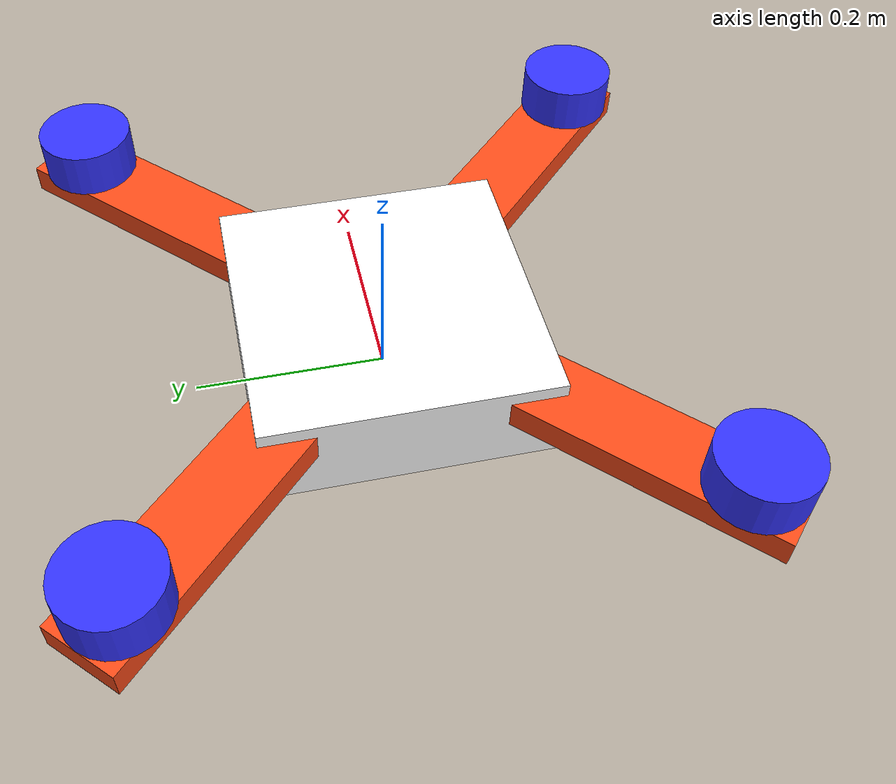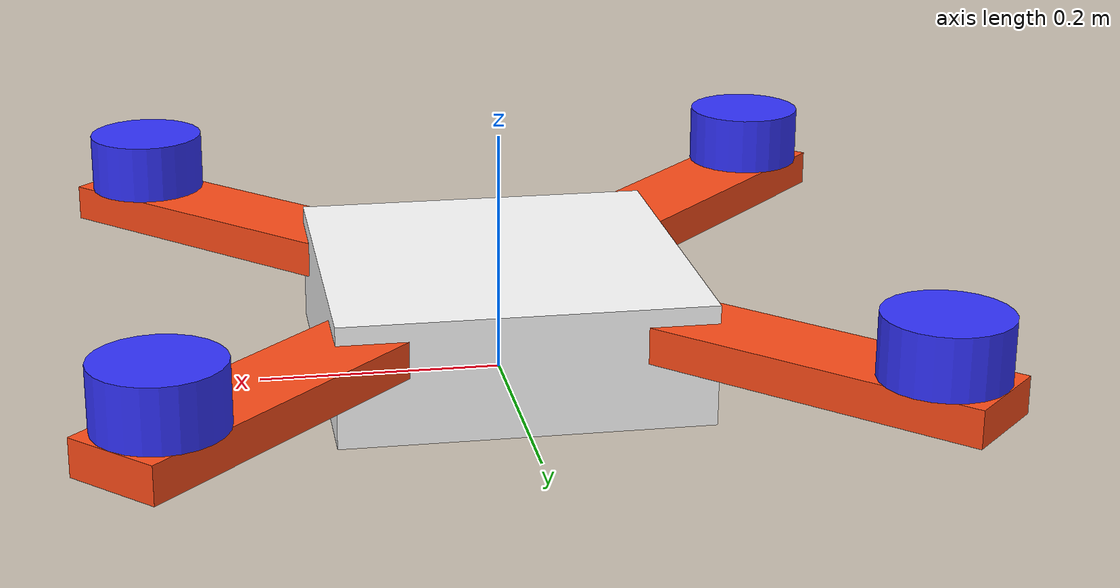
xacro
<?xml version="1.0"?>

<robot xmlns:xacro="http://www.ros.org/wiki/xacro" name="drone">\

    <xacro:include filename = "inertial_macros.xacro"/>
    <xacro:include filename = "drone_macros.xacro"/>

    <!-- MATERIAL -->

    <material name = "white">
        <color rgba="1 1 1 1"/>
    </material>

    <material name="orange">
        <color rgba="1 0.3 0.1 1"/>
    </material>

    <material name="blue">
        <color rgba="0.2 0.2 1 1"/>
    </material>

    <material name="black">
        <color rgba="0 0 0 1"/>
    </material>

    <!-- PARAMETERS -->

    <xacro:property name = "base_length" value = "0.3"/>
    <xacro:property name = "base_width" value = "0.3"/>
    <xacro:property name = "base_height" value = "0.1"/>
    <xacro:property name = "rotor_radius" value = "0.05"/>
    <xacro:property name = "rotor_length" value = "0.05"/>
    <xacro:property name = "mass" value = "1.0"/>
    <xacro:property name = "wing_pos" value = "${base_height/2+0.02}"/>

    <!-- BASE_LINK -->

    <link name="base_link">

    </link>

    <!-- BODY_LINK -->

    <joint name="body_joint" type="fixed">
        <parent link="base_link"/>
        <child link="body_link"/>
        <origin xyz="0 0 0"/>
    </joint>

    <link name="body_link">
        <visual>
            <origin xyz="0 0 ${base_height/2}"/>
            <geometry>
                <box size="${base_length} ${base_width} ${base_height}"/>
            </geometry>
            <material name = "white"/>
        </visual>

        <collision>
            <origin xyz="0 0 ${base_height/2}"/>
            <geometry>
                <box size="${base_length} ${base_width} ${base_height}"/>
            </geometry>
        </collision>

        <xacro:inertial_box mass = "${mass}" x = "${base_length}" y = "${base_width}" z = "${base_height}">
            <origin xyz="0 0 ${base_height/2}" rpy = "0 0 0"/>
        </xacro:inertial_box>
    </link>

    <gazebo reference = "body_link">
        Gazebo/White
    </gazebo>

    <!-- Bar 1 -->

    <xacro:bar name="bar1" parent="body_link" angle="${pi/4}" pos="0.3 0 ${wing_pos}" size="0.3 0.08 0.03"></xacro:bar>

    <!-- Rotor 1 -->

    <xacro:rotor num="1" parent="bar1" radius="${rotor_radius}" length="${rotor_length}" wing_pos="${wing_pos}"></xacro:rotor>

    <!-- Bar 2 -->

    <xacro:bar name="bar2" parent="body_link" angle="${3*pi/4}" pos="0.3 0 ${wing_pos}" size="0.3 0.08 0.03"></xacro:bar>

    <!-- Rotor 2 -->

    <xacro:rotor num="2" parent="bar2" radius="${rotor_radius}" length="${rotor_length}" wing_pos="${wing_pos}"></xacro:rotor>

    <!-- Bar 3 -->

    <xacro:bar name="bar3" parent="body_link" angle="${-3*pi/4}" pos="0.3 0 ${wing_pos}" size="0.3 0.08 0.03"></xacro:bar>

    <!-- Rotor 3 -->

    <xacro:rotor num="3" parent="bar3" radius="${rotor_radius}" length="${rotor_length}" wing_pos="${wing_pos}"></xacro:rotor>

    <!-- Bar 4 -->

    <xacro:bar name="bar4" parent="body_link" angle="${-pi/4}" pos="0.3 0 ${wing_pos}" size="0.3 0.08 0.03"></xacro:bar>

    <!-- Rotor 4 -->

    <xacro:rotor num="4" parent="bar4" radius="${rotor_radius}" length="${rotor_length}" wing_pos="${wing_pos}"></xacro:rotor>

</robot>

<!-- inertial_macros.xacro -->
<robot xmlns:xacro="https://www.ros.org/wiki/xacro">

    <!-- Specify some standard inertial calculations https://en.wikipedia.org/wiki/List_of_moments_of_inertia -->
    <!-- These make use of xacro's mathematical functionality -->

    <xacro:macro name="inertial_sphere" params="mass radius *origin">
        <inertial>
            <xacro:insert_block name="origin"/>
            <mass value="${mass}"/>
            <inertia ixx = "${(2/5) * mass * (radius * radius)}" ixy = "0.0" ixz = "0.0"
                    iyy = "${(2/5) * mass * (radius * radius)}" iyz = "0.0"
                    izz = "${(2/5) * mass * (radius * radius)}"/>
        </inertial>
    </xacro:macro>

    <xacro:macro name = "inertial_box" params = "mass x y z *origin">
        <inertial>
            <xacro:insert_block name = "origin"/>
            <mass value="${mass}"/>
            <inertia ixx = "${(1/12) * mass * (y*y + z*z)}" ixy = "0.0" ixz = "0.0"
                    iyy = "${(1/12) * mass * (x*x + z*z)}" iyz = "0.0"
                    izz = "${(1/12) * mass * (x*x + y*y)}"/>
        </inertial>
    </xacro:macro>

    <xacro:macro name = "inertial_cylinder" params = "mass length radius *origin">
        <inertial>
            <xacro:insert_block name = "origin"/>
            <mass value = "${mass}"/>
            <inertia ixx = "${(1/12) * mass * (3*radius*radius + length*length)}" ixy = "0.0" ixz = "0.0"
                    iyy = "${(1/12) * mass * (3*radius*radius + length*length)}" iyz = "0.0"
                    izz = "${(1/12) * mass * (radius*radius)}"/>
        </inertial>
    </xacro:macro>

</robot>

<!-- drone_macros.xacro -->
<robot xmlns:xacro="http://www.ros.org/wiki/xacro">

    <xacro:include filename="inertial_macros.xacro"/>

    <xacro:property name = "mass" value = "1.0"/>

    <!-- Bar -->

    <xacro:macro name="bar" params="name parent angle pos size ">
        <joint name="${name}_joint" type="fixed">
            <parent link="${parent}"/>
            <child link="${name}"/>
            <origin xyz="0 0 0" rpy="0 0 ${angle}"/>
        </joint>

        <link name="${name}">
            <visual>
                <origin xyz="${pos}"/>
                <geometry>
                    <box size="${size}"/>
                </geometry>
                <material name="orange"/>
            </visual>

            <collision>
                <origin xyz="${pos}"/>
                <geometry>
                    <box size="${size}"/>
                </geometry>
            </collision>
        </link>

        <xacro:inertial_box mass="${mass}" x="${size[0]}" y="${size[1]}" z="${size[2]}"></xacro:inertial_box>

        <gazebo reference="${name}">
            <material>
                Gazebo/Orange
            </material>
        </gazebo>
    </xacro:macro>

    <!-- Rotor -->

    <xacro:macro name="rotor" params="num parent radius length wing_pos">
        <joint name="rotor${num}_joint" type="continuous">
            <parent link="${parent}"/>
            <child link="rotor${num}"/>
            <origin xyz="${0.45-radius} 0.0 ${wing_pos +0.015}"/>
            <axis xyz="0 0 ${-1 if num %2 == 1 else 1}"/>
        </joint>

        <link name="rotor${num}">
            <visual>
                <origin xyz="0 0 ${length/2}"/>
                <geometry>
                    <cylinder radius="${radius}" length="${length}"/>
                </geometry>
                <material name = "blue"/>
            </visual>

            <collision>
                <origin xyz="0 0 ${length/2}"/>
                <geometry>
                    <cylinder radius="${radius}" length="${length}"/>
                </geometry>
            </collision>
        </link>

        <xacro:inertial_cylinder mass="${mass}" length="${length}" radius="${radius}">
        </xacro:inertial_cylinder>

        <gazebo>
            <material>
                Gazebo/Blue
            </material>
        </gazebo>
    </xacro:macro>

</robot>
